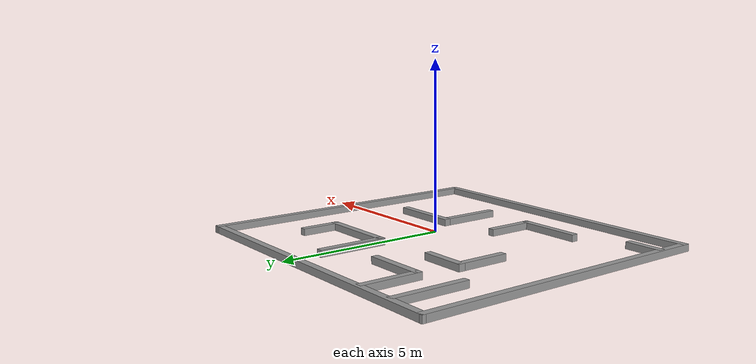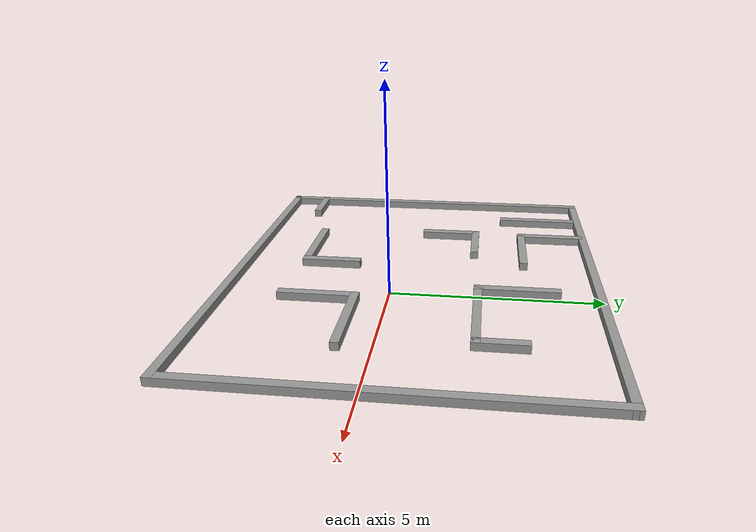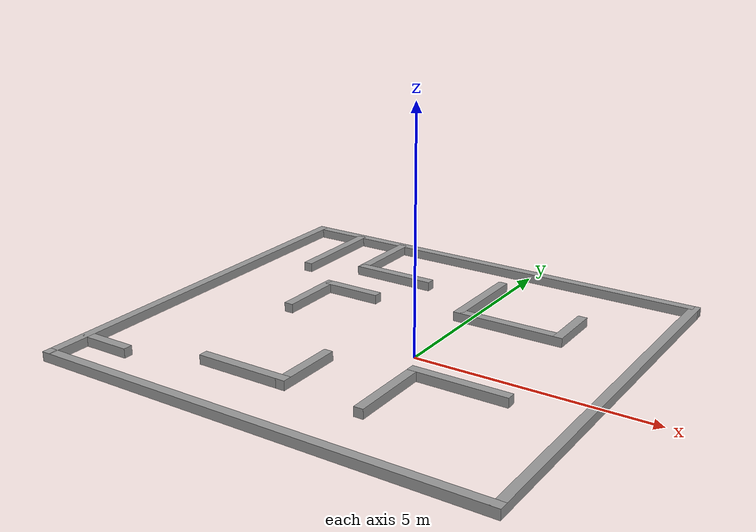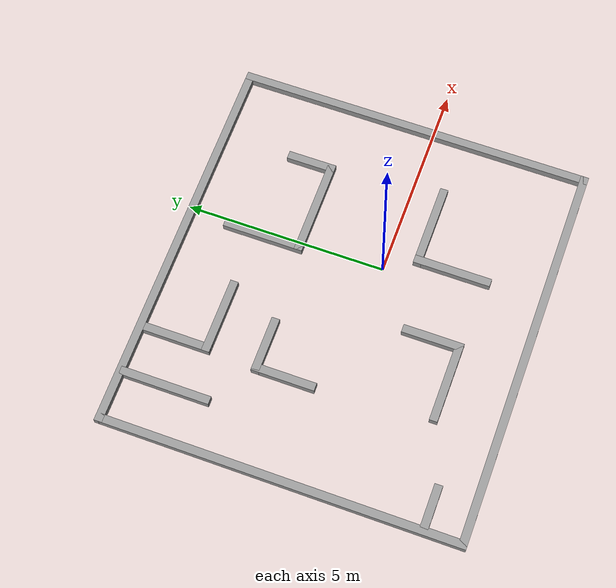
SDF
<?xml version='1.0'?>
<sdf version='1.4'>
  <model name='test_arena'>
    <link name='Wall_10'>
      <collision name='Wall_10_Collision'>
        <geometry>
          <box>
            <size>1.57197 0.2 0.2</size>
          </box>
        </geometry>
        <pose>0 0 0.1 0 -0 0</pose>
      </collision>
      <visual name='Wall_10_Visual'>
        <pose>0 0 0.1 0 -0 0</pose>
        <geometry>
          <box>
            <size>1.57197 0.2 0.2</size>
          </box>
        </geometry>
        <material>
          <script>
            <uri>file://media/materials/scripts/gazebo.material</uri>
            <name>Gazebo/Grey</name>
          </script>
        </material>
      </visual>
      <velocity_decay>
        <linear>0</linear>
        <angular>0</angular>
      </velocity_decay>
      <pose>-3.40565 1.24469 0 0 0 -1.5708</pose>
    </link>
    <link name='Wall_12'>
      <collision name='Wall_12_Collision'>
        <geometry>
          <box>
            <size>2.0293 0.2 0.2</size>
          </box>
        </geometry>
        <pose>0 0 0.1 0 -0 0</pose>
      </collision>
      <visual name='Wall_12_Visual'>
        <pose>0 0 0.1 0 -0 0</pose>
        <geometry>
          <box>
            <size>2.0293 0.2 0.2</size>
          </box>
        </geometry>
        <material>
          <script>
            <uri>file://media/materials/scripts/gazebo.material</uri>
            <name>Gazebo/Grey</name>
          </script>
        </material>
      </visual>
      <velocity_decay>
        <linear>0</linear>
        <angular>0</angular>
      </velocity_decay>
      <pose>-2.24475 -2.36113 0 0 -0 0</pose>
    </link>
    <link name='Wall_13'>
      <collision name='Wall_13_Collision'>
        <geometry>
          <box>
            <size>1.50209 0.2 0.2</size>
          </box>
        </geometry>
        <pose>0 0 0.1 0 -0 0</pose>
      </collision>
      <visual name='Wall_13_Visual'>
        <pose>0 0 0.1 0 -0 0</pose>
        <geometry>
          <box>
            <size>1.50209 0.2 0.2</size>
          </box>
        </geometry>
        <material>
          <script>
            <uri>file://media/materials/scripts/gazebo.material</uri>
            <name>Gazebo/Grey</name>
          </script>
        </material>
      </visual>
      <velocity_decay>
        <linear>0</linear>
        <angular>0</angular>
      </velocity_decay>
      <pose>-1.3301 -1.71009 0 0 -0 1.5708</pose>
    </link>
    <link name='Wall_15'>
      <collision name='Wall_15_Collision'>
        <geometry>
          <box>
            <size>2.09965 0.2 0.2</size>
          </box>
        </geometry>
        <pose>0 0 0.1 0 -0 0</pose>
      </collision>
      <visual name='Wall_15_Visual'>
        <pose>0 0 0.1 0 -0 0</pose>
        <geometry>
          <box>
            <size>2.09965 0.2 0.2</size>
          </box>
        </geometry>
        <material>
          <script>
            <uri>file://media/materials/scripts/gazebo.material</uri>
            <name>Gazebo/Grey</name>
          </script>
        </material>
      </visual>
      <velocity_decay>
        <linear>0</linear>
        <angular>0</angular>
      </velocity_decay>
      <pose>1.41384 -0.742907 0 0 -0 3.14159</pose>
    </link>
    <link name='Wall_16'>
      <collision name='Wall_16_Collision'>
        <geometry>
          <box>
            <size>1.92376 0.2 0.2</size>
          </box>
        </geometry>
        <pose>0 0 0.1 0 -0 0</pose>
      </collision>
      <visual name='Wall_16_Visual'>
        <pose>0 0 0.1 0 -0 0</pose>
        <geometry>
          <box>
            <size>1.92376 0.2 0.2</size>
          </box>
        </geometry>
        <material>
          <script>
            <uri>file://media/materials/scripts/gazebo.material</uri>
            <name>Gazebo/Grey</name>
          </script>
        </material>
      </visual>
      <velocity_decay>
        <linear>0</linear>
        <angular>0</angular>
      </velocity_decay>
      <pose>0.464016 -1.60479 0 0 0 -1.5708</pose>
    </link>
    <link name='Wall_18'>
      <collision name='Wall_18_Collision'>
        <geometry>
          <box>
            <size>2.02963 0.2 0.2</size>
          </box>
        </geometry>
        <pose>0 0 0.1 0 -0 0</pose>
      </collision>
      <visual name='Wall_18_Visual'>
        <pose>0 0 0.1 0 -0 0</pose>
        <geometry>
          <box>
            <size>2.02963 0.2 0.2</size>
          </box>
        </geometry>
        <material>
          <script>
            <uri>file://media/materials/scripts/gazebo.material</uri>
            <name>Gazebo/Grey</name>
          </script>
        </material>
      </visual>
      <velocity_decay>
        <linear>0</linear>
        <angular>0</angular>
      </velocity_decay>
      <pose>-0.169201 2.98621 0 0 0 -1.5708</pose>
    </link>
    <link name='Wall_19'>
      <collision name='Wall_19_Collision'>
        <geometry>
          <box>
            <size>2.45144 0.2 0.2</size>
          </box>
        </geometry>
        <pose>0 0 0.1 0 -0 0</pose>
      </collision>
      <visual name='Wall_19_Visual'>
        <pose>0 0 0.1 0 -0 0</pose>
        <geometry>
          <box>
            <size>2.45144 0.2 0.2</size>
          </box>
        </geometry>
        <material>
          <script>
            <uri>file://media/materials/scripts/gazebo.material</uri>
            <name>Gazebo/Grey</name>
          </script>
        </material>
      </visual>
      <velocity_decay>
        <linear>0</linear>
        <angular>0</angular>
      </velocity_decay>
      <pose>0.956519 2.07139 0 0 -0 0</pose>
    </link>
    <link name='Wall_2'>
      <collision name='Wall_2_Collision'>
        <geometry>
          <box>
            <size>8.96386 0.2 0.2</size>
          </box>
        </geometry>
        <pose>0 0 0.1 0 -0 0</pose>
      </collision>
      <visual name='Wall_2_Visual'>
        <pose>0 0 0.1 0 -0 0</pose>
        <geometry>
          <box>
            <size>8.96386 0.2 0.2</size>
          </box>
        </geometry>
        <material>
          <script>
            <uri>file://media/materials/scripts/gazebo.material</uri>
            <name>Gazebo/Grey</name>
          </script>
        </material>
      </visual>
      <velocity_decay>
        <linear>0</linear>
        <angular>0</angular>
      </velocity_decay>
      <pose>-5.75759 0.490602 0 0 0 -1.5708</pose>
    </link>
    <link name='Wall_20'>
      <collision name='Wall_20_Collision'>
        <geometry>
          <box>
            <size>1.22018 0.2 0.2</size>
          </box>
        </geometry>
        <pose>0 0 0.1 0 -0 0</pose>
      </collision>
      <visual name='Wall_20_Visual'>
        <pose>0 0 0.1 0 -0 0</pose>
        <geometry>
          <box>
            <size>1.22018 0.2 0.2</size>
          </box>
        </geometry>
        <material>
          <script>
            <uri>file://media/materials/scripts/gazebo.material</uri>
            <name>Gazebo/Grey</name>
          </script>
        </material>
      </visual>
      <velocity_decay>
        <linear>0</linear>
        <angular>0</angular>
      </velocity_decay>
      <pose>2.08224 2.58149 0 0 -0 1.5708</pose>
    </link>
    <link name='Wall_22'>
      <collision name='Wall_22_Collision'>
        <geometry>
          <box>
            <size>2.24037 0.2 0.2</size>
          </box>
        </geometry>
        <pose>0 0 0.1 0 -0 0</pose>
      </collision>
      <visual name='Wall_22_Visual'>
        <pose>0 0 0.1 0 -0 0</pose>
        <geometry>
          <box>
            <size>2.24037 0.2 0.2</size>
          </box>
        </geometry>
        <material>
          <script>
            <uri>file://media/materials/scripts/gazebo.material</uri>
            <name>Gazebo/Grey</name>
          </script>
        </material>
      </visual>
      <velocity_decay>
        <linear>0</linear>
        <angular>0</angular>
      </velocity_decay>
      <pose>-4.53137 3.75997 0 0 0 -1.5708</pose>
    </link>
    <link name='Wall_24'>
      <collision name='Wall_24_Collision'>
        <geometry>
          <box>
            <size>1.78304 0.2 0.2</size>
          </box>
        </geometry>
        <pose>0 0 0.1 0 -0 0</pose>
      </collision>
      <visual name='Wall_24_Visual'>
        <pose>0 0 0.1 0 -0 0</pose>
        <geometry>
          <box>
            <size>1.78304 0.2 0.2</size>
          </box>
        </geometry>
        <material>
          <script>
            <uri>file://media/materials/scripts/gazebo.material</uri>
            <name>Gazebo/Grey</name>
          </script>
        </material>
      </visual>
      <velocity_decay>
        <linear>0</linear>
        <angular>0</angular>
      </velocity_decay>
      <pose>-3.33529 3.98864 0 0 0 -1.5708</pose>
    </link>
    <link name='Wall_25'>
      <collision name='Wall_25_Collision'>
        <geometry>
          <box>
            <size>1.88858 0.2 0.2</size>
          </box>
        </geometry>
        <pose>0 0 0.1 0 -0 0</pose>
      </collision>
      <visual name='Wall_25_Visual'>
        <pose>0 0 0.1 0 -0 0</pose>
        <geometry>
          <box>
            <size>1.88858 0.2 0.2</size>
          </box>
        </geometry>
        <material>
          <script>
            <uri>file://media/materials/scripts/gazebo.material</uri>
            <name>Gazebo/Grey</name>
          </script>
        </material>
      </visual>
      <velocity_decay>
        <linear>0</linear>
        <angular>0</angular>
      </velocity_decay>
      <pose>-2.491 3.19712 0 0 -0 0</pose>
    </link>
    <link name='Wall_3'>
      <collision name='Wall_3_Collision'>
        <geometry>
          <box>
            <size>9.8112 0.2 0.2</size>
          </box>
        </geometry>
        <pose>0 0 0.1 0 -0 0</pose>
      </collision>
      <visual name='Wall_3_Visual'>
        <pose>0 0 0.1 0 -0 0</pose>
        <geometry>
          <box>
            <size>9.8112 0.2 0.2</size>
          </box>
        </geometry>
        <material>
          <script>
            <uri>file://media/materials/scripts/gazebo.material</uri>
            <name>Gazebo/Grey</name>
          </script>
        </material>
      </visual>
      <velocity_decay>
        <linear>0</linear>
        <angular>0</angular>
      </velocity_decay>
      <pose>-0.95199 -3.89133 0 0 -0 0</pose>
    </link>
    <link name='Wall_4'>
      <collision name='Wall_4_Collision'>
        <geometry>
          <box>
            <size>8.97886 0.2 0.2</size>
          </box>
        </geometry>
        <pose>0 0 0.1 0 -0 0</pose>
      </collision>
      <visual name='Wall_4_Visual'>
        <pose>0 0 0.1 0 -0 0</pose>
        <geometry>
          <box>
            <size>8.97886 0.2 0.2</size>
          </box>
        </geometry>
        <material>
          <script>
            <uri>file://media/materials/scripts/gazebo.material</uri>
            <name>Gazebo/Grey</name>
          </script>
        </material>
      </visual>
      <velocity_decay>
        <linear>0</linear>
        <angular>0</angular>
      </velocity_decay>
      <pose>3.85361 0.498102 0 0 -0 1.5708</pose>
    </link>
    <link name='Wall_5'>
      <collision name='Wall_5_Collision'>
        <geometry>
          <box>
            <size>9.81121 0.2 0.2</size>
          </box>
        </geometry>
        <pose>0 0 0.1 0 -0 0</pose>
      </collision>
      <visual name='Wall_5_Visual'>
        <pose>0 0 0.1 0 -0 0</pose>
        <geometry>
          <box>
            <size>9.81121 0.2 0.2</size>
          </box>
        </geometry>
        <material>
          <script>
            <uri>file://media/materials/scripts/gazebo.material</uri>
            <name>Gazebo/Grey</name>
          </script>
        </material>
      </visual>
      <velocity_decay>
        <linear>0</linear>
        <angular>0</angular>
      </velocity_decay>
      <pose>-0.95199 4.88003 0 0 0 -3.14003</pose>
    </link>
    <link name='Wall_7'>
      <collision name='Wall_7_Collision'>
        <geometry>
          <box>
            <size>1.14983 0.2 0.2</size>
          </box>
        </geometry>
        <pose>0 0 0.1 0 -0 0</pose>
      </collision>
      <visual name='Wall_7_Visual'>
        <pose>0 0 0.1 0 -0 0</pose>
        <geometry>
          <box>
            <size>1.14983 0.2 0.2</size>
          </box>
        </geometry>
        <material>
          <script>
            <uri>file://media/materials/scripts/gazebo.material</uri>
            <name>Gazebo/Grey</name>
          </script>
        </material>
      </visual>
      <velocity_decay>
        <linear>0</linear>
        <angular>0</angular>
      </velocity_decay>
      <pose>-5.21735 -2.95917 0 0 -0 0</pose>
    </link>
    <link name='Wall_9'>
      <collision name='Wall_9_Collision'>
        <geometry>
          <box>
            <size>1.39608 0.2 0.2</size>
          </box>
        </geometry>
        <pose>0 0 0.1 0 -0 0</pose>
      </collision>
      <visual name='Wall_9_Visual'>
        <pose>0 0 0.1 0 -0 0</pose>
        <geometry>
          <box>
            <size>1.39608 0.2 0.2</size>
          </box>
        </geometry>
        <material>
          <script>
            <uri>file://media/materials/scripts/gazebo.material</uri>
            <name>Gazebo/Grey</name>
          </script>
        </material>
      </visual>
      <velocity_decay>
        <linear>0</linear>
        <angular>0</angular>
      </velocity_decay>
      <pose>-2.80761 1.93068 0 0 -0 3.14159</pose>
    </link>
    <static>1</static>
  </model>
</sdf>
